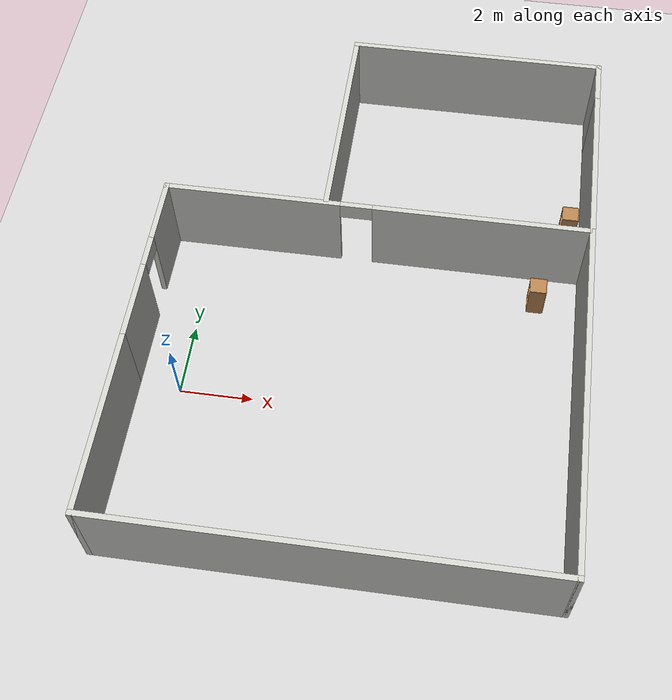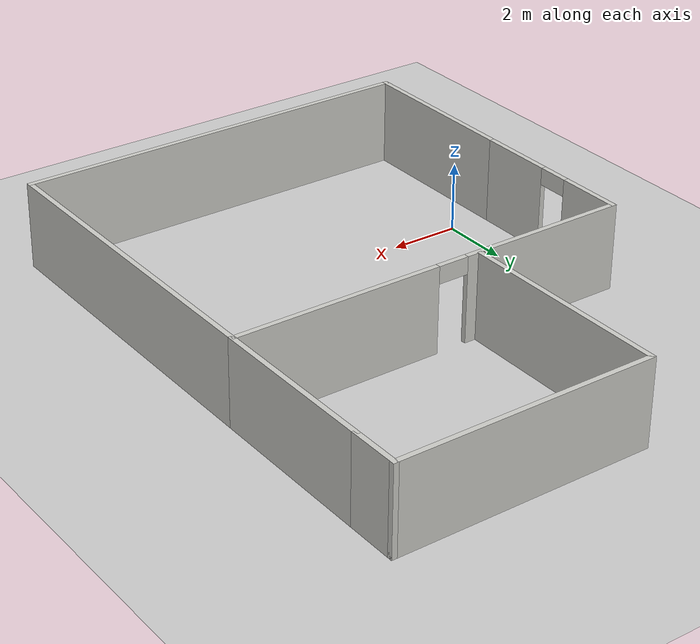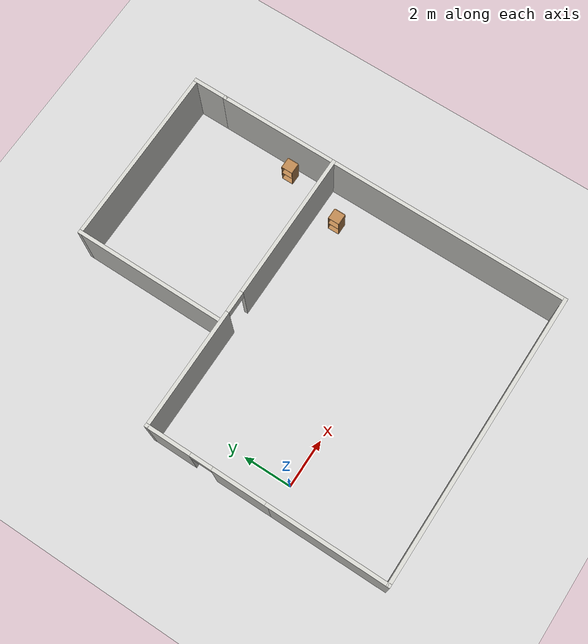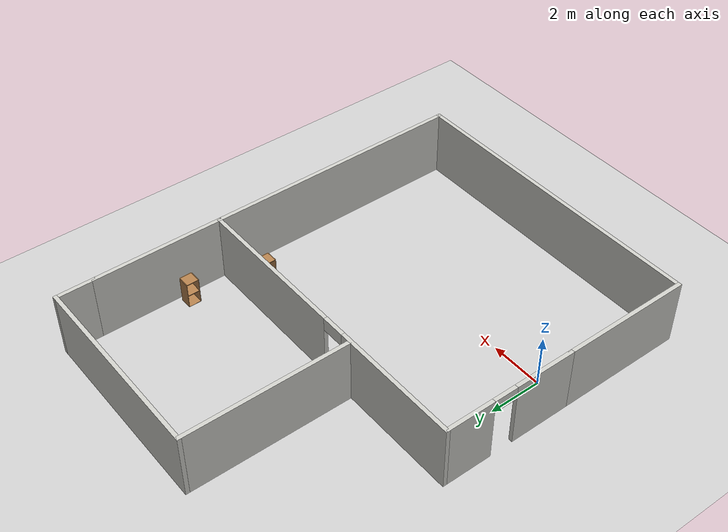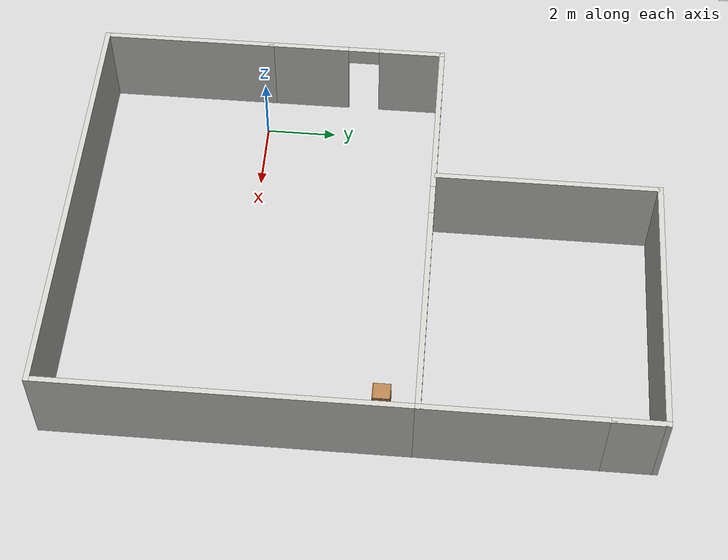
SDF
<sdf version="1.7">
 <world name="default">
  <light name="sun" type="directional">
   <pose>0 0 10 0 -0 0</pose>
   <diffuse>0.8 0.8 0.8 1</diffuse>
   <specular>0.2 0.2 0.2 1</specular>
   <attenuation>
    <range>1000</range>
    <constant>0.9</constant>
    <linear>0.01</linear>
    <quadratic>0.001</quadratic>
   </attenuation>
   <direction>-0.5 0.1 -0.9</direction>
   <spot><inner_angle>0</inner_angle><outer_angle>0</outer_angle><falloff>0</falloff></spot>
  </light>
  <model name="ground_plane">
   <static>1</static>
   <link name="link">
    <collision name="collision">
     <geometry><plane><normal>0 0 1</normal><size>100 100</size></plane></geometry>
     <surface><friction><ode><mu>100</mu><mu2>50</mu2></ode></friction></surface>
    </collision>
    <visual name="visual">
     <cast_shadows>0</cast_shadows>
     <geometry><plane><normal>0 0 1</normal><size>100 100</size></plane></geometry>
     <material>
      <script><uri>file://media/materials/scripts/gazebo.material</uri><name>Gazebo/Grey</name></script>
     </material>
    </visual>
   </link>
  </model>
  <gravity>0 0 -9.8</gravity>
  <magnetic_field>6e-06 2.3e-05 -4.2e-05</magnetic_field>
  <atmosphere type="adiabatic"/>
  <physics type="ode">
   <max_step_size>0.001</max_step_size>
   <real_time_factor>1</real_time_factor>
   <real_time_update_rate>1000</real_time_update_rate>
  </physics>
  <scene><ambient>1 1 1 1</ambient><background>0.7 0.7 0.7 1</background><shadows>1</shadows></scene>
  <audio><device>default</device></audio>
  <spherical_coordinates>
   <surface_model>EARTH_WGS84</surface_model>
   <latitude_deg>0</latitude_deg>
   <longitude_deg>0</longitude_deg>
   <elevation>0</elevation>
   <heading_deg>0</heading_deg>
  </spherical_coordinates>
  <model name="house_model">
   <pose>4.72 3.23006 0 0 -0 0</pose>
   <link name="Wall_12">
    <collision name="Wall_12_Collision">
     <geometry><box><size>5 0.15 2.5</size></box></geometry>
     <pose>0 0 1.25 0 -0 0</pose>
    </collision>
    <visual name="Wall_12_Visual">
     <pose>0 0 1.25 0 -0 0</pose>
     <geometry><box><size>5 0.15 2.5</size></box></geometry>
     <material>
      <script><uri>file://media/materials/scripts/gazebo.material</uri><name>Gazebo/CeilingTiled</name></script>
      <ambient>1 1 1 1</ambient>
     </material>
     <meta><layer>0</layer></meta>
    </visual>
    <pose>5.925 4.25 0 0 -0 1.5708</pose>
   </link>
   <link name="Wall_13">
    <collision name="Wall_13_Collision">
     <geometry><box><size>1.5 0.15 2.5</size></box></geometry>
     <pose>0 0 1.25 0 -0 0</pose>
    </collision>
    <visual name="Wall_13_Visual">
     <pose>0 0 1.25 0 -0 0</pose>
     <geometry><box><size>1.5 0.15 2.5</size></box></geometry>
     <material>
      <script><uri>file://media/materials/scripts/gazebo.material</uri><name>Gazebo/CeilingTiled</name></script>
      <ambient>1 1 1 1</ambient>
     </material>
     <meta><layer>0</layer></meta>
    </visual>
    <pose>5.925 7.35 0 0 -0 1.5708</pose>
   </link>
   <link name="Wall_14">
    <collision name="Wall_14_Collision">
     <geometry><box><size>7.5 0.15 2.5</size></box></geometry>
     <pose>0 0 1.25 0 -0 0</pose>
    </collision>
    <visual name="Wall_14_Visual">
     <pose>0 0 1.25 0 -0 0</pose>
     <geometry><box><size>7.5 0.15 2.5</size></box></geometry>
     <material>
      <script><uri>file://media/materials/scripts/gazebo.material</uri><name>Gazebo/CeilingTiled</name></script>
      <ambient>1 1 1 1</ambient>
     </material>
     <meta><layer>0</layer></meta>
    </visual>
    <pose>2.25 8.025 0 0 -0 3.14159</pose>
   </link>
   <link name="Wall_18">
    <collision name="Wall_18_Collision">
     <geometry><box><size>6.25 0.15 2.5</size></box></geometry>
     <pose>0 0 1.25 0 -0 0</pose>
    </collision>
    <visual name="Wall_18_Visual">
     <pose>0 0 1.25 0 -0 0</pose>
     <geometry><box><size>6.25 0.15 2.5</size></box></geometry>
     <material>
      <script><uri>file://media/materials/scripts/gazebo.material</uri><name>Gazebo/CeilingTiled</name></script>
      <ambient>1 1 1 1</ambient>
     </material>
     <meta><layer>0</layer></meta>
    </visual>
    <pose>-1.425 4.975 0 0 -0 -1.5708</pose>
   </link>
   <link name="Wall_5">
    <collision name="Wall_5_Collision">
     <geometry><box><size>5 0.15 2.5</size></box></geometry>
     <pose>0 0 1.25 0 -0 0</pose>
    </collision>
    <visual name="Wall_5_Visual">
     <pose>0 0 1.25 0 -0 0</pose>
     <geometry><box><size>5 0.15 2.5</size></box></geometry>
     <material>
      <script><uri>file://media/materials/scripts/gazebo.material</uri><name>Gazebo/CeilingTiled</name></script>
      <ambient>1 1 1 1</ambient>
     </material>
     <meta><layer>0</layer></meta>
    </visual>
    <pose>-5.925 -5.6 0 0 -0 -1.5708</pose>
   </link>
   <link name="Wall_6">
    <collision name="Wall_6_Collision">
     <geometry><box><size>12 0.15 2.5</size></box></geometry>
     <pose>0 0 1.25 0 -0 0</pose>
    </collision>
    <visual name="Wall_6_Visual">
     <pose>0 0 1.25 0 -0 0</pose>
     <geometry><box><size>12 0.15 2.5</size></box></geometry>
     <material>
      <script><uri>file://media/materials/scripts/gazebo.material</uri><name>Gazebo/CeilingTiled</name></script>
      <ambient>1 1 1 1</ambient>
     </material>
     <meta><layer>0</layer></meta>
    </visual>
    <pose>-1e-06 -8.025 0 0 -0 0</pose>
   </link>
   <link name="Wall_7">
    <collision name="Wall_7_Collision">
     <geometry><box><size>10 0.15 2.5</size></box></geometry>
     <pose>0 0 1.25 0 -0 0</pose>
    </collision>
    <visual name="Wall_7_Visual">
     <pose>0 0 1.25 0 -0 0</pose>
     <geometry><box><size>10 0.15 2.5</size></box></geometry>
     <material>
      <script><uri>file://media/materials/scripts/gazebo.material</uri><name>Gazebo/CeilingTiled</name></script>
      <ambient>1 1 1 1</ambient>
     </material>
     <meta><layer>0</layer></meta>
    </visual>
    <pose>5.925 -3.1 0 0 -0 1.5708</pose>
   </link>
   <link name="Wall_8">
    <pose>-1e-06 1.825 0 0 -0 3.14159</pose>
    <visual name="Wall_8_Visual_0">
     <pose>-2.93892 0 1.25 0 -0 0</pose>
     <geometry><box><size>6.12216 0.15 2.5</size></box></geometry>
     <material>
      <script><uri>file://media/materials/scripts/gazebo.material</uri><name>Gazebo/CeilingTiled</name></script>
      <ambient>1 1 1 1</ambient>
     </material>
     <meta><layer>0</layer></meta>
    </visual>
    <collision name="Wall_8_Collision_0">
     <geometry><box><size>6.12216 0.15 2.5</size></box></geometry>
     <pose>-2.93892 0 1.25 0 -0 0</pose>
    </collision>
    <visual name="Wall_8_Visual_1">
     <pose>3.51108 0 1.25 0 -0 0</pose>
     <geometry><box><size>4.97784 0.15 2.5</size></box></geometry>
     <material>
      <script><uri>file://media/materials/scripts/gazebo.material</uri><name>Gazebo/CeilingTiled</name></script>
      <ambient>1 1 1 1</ambient>
     </material>
     <meta><layer>0</layer></meta>
    </visual>
    <collision name="Wall_8_Collision_1">
     <geometry><box><size>4.97784 0.15 2.5</size></box></geometry>
     <pose>3.51108 0 1.25 0 -0 0</pose>
    </collision>
    <visual name="Wall_8_Visual_2">
     <pose>0.572156 0 2.25 0 -0 0</pose>
     <geometry><box><size>0.9 0.15 0.5</size></box></geometry>
     <material>
      <script><uri>file://media/materials/scripts/gazebo.material</uri><name>Gazebo/CeilingTiled</name></script>
      <ambient>1 1 1 1</ambient>
     </material>
     <meta><layer>0</layer></meta>
    </visual>
    <collision name="Wall_8_Collision_2">
     <geometry><box><size>0.9 0.15 0.5</size></box></geometry>
     <pose>0.572156 0 2.25 0 -0 0</pose>
    </collision>
   </link>
   <link name="Wall_9">
    <pose>-5.925 -0.675 0 0 -0 -1.5708</pose>
    <visual name="Wall_9_Visual_0">
     <pose>-1.62322 0 1.25 0 -0 0</pose>
     <geometry><box><size>1.90355 0.15 2.5</size></box></geometry>
     <material>
      <script><uri>file://media/materials/scripts/gazebo.material</uri><name>Gazebo/CeilingTiled</name></script>
      <ambient>1 1 1 1</ambient>
     </material>
     <meta><layer>0</layer></meta>
    </visual>
    <collision name="Wall_9_Collision_0">
     <geometry><box><size>1.90355 0.15 2.5</size></box></geometry>
     <pose>-1.62322 0 1.25 0 -0 0</pose>
    </collision>
    <visual name="Wall_9_Visual_1">
     <pose>1.40178 0 1.25 0 -0 0</pose>
     <geometry><box><size>2.34645 0.15 2.5</size></box></geometry>
     <material>
      <script><uri>file://media/materials/scripts/gazebo.material</uri><name>Gazebo/CeilingTiled</name></script>
      <ambient>1 1 1 1</ambient>
     </material>
     <meta><layer>0</layer></meta>
    </visual>
    <collision name="Wall_9_Collision_1">
     <geometry><box><size>2.34645 0.15 2.5</size></box></geometry>
     <pose>1.40178 0 1.25 0 -0 0</pose>
    </collision>
    <visual name="Wall_9_Visual_2">
     <pose>-0.221447 0 2.25 0 -0 0</pose>
     <geometry><box><size>0.9 0.15 0.5</size></box></geometry>
     <material>
      <script><uri>file://media/materials/scripts/gazebo.material</uri><name>Gazebo/CeilingTiled</name></script>
      <ambient>1 1 1 1</ambient>
     </material>
     <meta><layer>0</layer></meta>
    </visual>
    <collision name="Wall_9_Collision_2">
     <geometry><box><size>0.9 0.15 0.5</size></box></geometry>
     <pose>-0.221447 0 2.25 0 -0 0</pose>
    </collision>
   </link>
   <static>1</static>
  </model>
  <model name="cabinet">
   <static>1</static>
   <link name="cabinet_bottom_plate">
    <inertial>
     <pose>0 0 -1 0 -0 0</pose>
     <inertia><ixx>2.05</ixx><ixy>0</ixy><ixz>0</ixz><iyy>2.05</iyy><iyz>0</iyz><izz>2.05</izz></inertia>
     <mass>25</mass>
    </inertial>
    <collision name="cabinet_bottom_plate_geom">
     <pose>0 0 0.01 0 -0 0</pose>
     <geometry><box><size>0.45 0.45 0.02</size></box></geometry>
    </collision>
    <visual name="cabinet_bottom_plate_geom_visual">
     <pose>0 0 0.01 0 -0 0</pose>
     <geometry><box><size>0.45 0.45 0.02</size></box></geometry>
     <material>
      <script><uri>file://media/materials/scripts/gazebo.material</uri><name>Gazebo/Wood</name></script>
     </material>
    </visual>
    <collision name="cabinet_bottom_plate_geom_cabinet_back_plate">
     <pose>0.235 0 0.51 0 -0 0</pose>
     <geometry><box><size>0.02 0.45 1.02</size></box></geometry>
    </collision>
    <visual name="cabinet_bottom_plate_geom_cabinet_back_plate_visual">
     <pose>0.235 0 0.51 0 -0 0</pose>
     <geometry><box><size>0.02 0.45 1.02</size></box></geometry>
     <material>
      <script><uri>file://media/materials/scripts/gazebo.material</uri><name>Gazebo/Wood</name></script>
     </material>
    </visual>
    <collision name="cabinet_bottom_plate_geom_cabinet_left_plate">
     <pose>0 0.235 0.51 0 -0 0</pose>
     <geometry><box><size>0.45 0.02 1.02</size></box></geometry>
    </collision>
    <visual name="cabinet_bottom_plate_geom_cabinet_left_plate_visual">
     <pose>0 0.235 0.51 0 -0 0</pose>
     <geometry><box><size>0.45 0.02 1.02</size></box></geometry>
     <material>
      <script><uri>file://media/materials/scripts/gazebo.material</uri><name>Gazebo/Wood</name></script>
     </material>
    </visual>
    <collision name="cabinet_bottom_plate_geom_cabinet_middle_plate">
     <pose>0 0 0.51 0 -0 0</pose>
     <geometry><box><size>0.45 0.45 0.02</size></box></geometry>
    </collision>
    <visual name="cabinet_bottom_plate_geom_cabinet_middle_plate_visual">
     <pose>0 0 0.51 0 -0 0</pose>
     <geometry><box><size>0.45 0.45 0.02</size></box></geometry>
     <material>
      <script><uri>file://media/materials/scripts/gazebo.material</uri><name>Gazebo/Wood</name></script>
     </material>
    </visual>
    <collision name="cabinet_bottom_plate_geom_cabinet_right_plate">
     <pose>0 -0.235 0.51 0 -0 0</pose>
     <geometry><box><size>0.45 0.02 1.02</size></box></geometry>
    </collision>
    <visual name="cabinet_bottom_plate_geom_cabinet_right_plate_visual">
     <pose>0 -0.235 0.51 0 -0 0</pose>
     <geometry><box><size>0.45 0.02 1.02</size></box></geometry>
     <material>
      <script><uri>file://media/materials/scripts/gazebo.material</uri><name>Gazebo/Wood</name></script>
     </material>
    </visual>
    <collision name="cabinet_bottom_plate_geom_cabinet_top_plate">
     <pose>0 0 1.01 0 -0 0</pose>
     <geometry><box><size>0.45 0.45 0.02</size></box></geometry>
    </collision>
    <visual name="cabinet_bottom_plate_geom_cabinet_top_plate_visual">
     <pose>0 0 1.01 0 -0 0</pose>
     <geometry><box><size>0.45 0.45 0.02</size></box></geometry>
     <material>
      <script><uri>file://media/materials/scripts/gazebo.material</uri><name>Gazebo/Wood</name></script>
     </material>
    </visual>
   </link>
   <pose>10.1852 6.73099 0 0 -0 0</pose>
  </model>
  <model name="cabinet_0">
   <static>1</static>
   <link name="cabinet_bottom_plate">
    <inertial>
     <pose>0 0 -1 0 -0 0</pose>
     <inertia><ixx>2.05</ixx><ixy>0</ixy><ixz>0</ixz><iyy>2.05</iyy><iyz>0</iyz><izz>2.05</izz></inertia>
     <mass>25</mass>
    </inertial>
    <collision name="cabinet_bottom_plate_geom">
     <pose>0 0 0.01 0 -0 0</pose>
     <geometry><box><size>0.45 0.45 0.02</size></box></geometry>
    </collision>
    <visual name="cabinet_bottom_plate_geom_visual">
     <pose>0 0 0.01 0 -0 0</pose>
     <geometry><box><size>0.45 0.45 0.02</size></box></geometry>
     <material>
      <script><uri>file://media/materials/scripts/gazebo.material</uri><name>Gazebo/Wood</name></script>
     </material>
    </visual>
    <collision name="cabinet_bottom_plate_geom_cabinet_back_plate">
     <pose>0.235 0 0.51 0 -0 0</pose>
     <geometry><box><size>0.02 0.45 1.02</size></box></geometry>
    </collision>
    <visual name="cabinet_bottom_plate_geom_cabinet_back_plate_visual">
     <pose>0.235 0 0.51 0 -0 0</pose>
     <geometry><box><size>0.02 0.45 1.02</size></box></geometry>
     <material>
      <script><uri>file://media/materials/scripts/gazebo.material</uri><name>Gazebo/Wood</name></script>
     </material>
    </visual>
    <collision name="cabinet_bottom_plate_geom_cabinet_left_plate">
     <pose>0 0.235 0.51 0 -0 0</pose>
     <geometry><box><size>0.45 0.02 1.02</size></box></geometry>
    </collision>
    <visual name="cabinet_bottom_plate_geom_cabinet_left_plate_visual">
     <pose>0 0.235 0.51 0 -0 0</pose>
     <geometry><box><size>0.45 0.02 1.02</size></box></geometry>
     <material>
      <script><uri>file://media/materials/scripts/gazebo.material</uri><name>Gazebo/Wood</name></script>
     </material>
    </visual>
    <collision name="cabinet_bottom_plate_geom_cabinet_middle_plate">
     <pose>0 0 0.51 0 -0 0</pose>
     <geometry><box><size>0.45 0.45 0.02</size></box></geometry>
    </collision>
    <visual name="cabinet_bottom_plate_geom_cabinet_middle_plate_visual">
     <pose>0 0 0.51 0 -0 0</pose>
     <geometry><box><size>0.45 0.45 0.02</size></box></geometry>
     <material>
      <script><uri>file://media/materials/scripts/gazebo.material</uri><name>Gazebo/Wood</name></script>
     </material>
    </visual>
    <collision name="cabinet_bottom_plate_geom_cabinet_right_plate">
     <pose>0 -0.235 0.51 0 -0 0</pose>
     <geometry><box><size>0.45 0.02 1.02</size></box></geometry>
    </collision>
    <visual name="cabinet_bottom_plate_geom_cabinet_right_plate_visual">
     <pose>0 -0.235 0.51 0 -0 0</pose>
     <geometry><box><size>0.45 0.02 1.02</size></box></geometry>
     <material>
      <script><uri>file://media/materials/scripts/gazebo.material</uri><name>Gazebo/Wood</name></script>
     </material>
    </visual>
    <collision name="cabinet_bottom_plate_geom_cabinet_top_plate">
     <pose>0 0 1.01 0 -0 0</pose>
     <geometry><box><size>0.45 0.45 0.02</size></box></geometry>
    </collision>
    <visual name="cabinet_bottom_plate_geom_cabinet_top_plate_visual">
     <pose>0 0 1.01 0 -0 0</pose>
     <geometry><box><size>0.45 0.45 0.02</size></box></geometry>
     <material>
      <script><uri>file://media/materials/scripts/gazebo.material</uri><name>Gazebo/Wood</name></script>
     </material>
    </visual>
   </link>
   <pose>9.39642 4.08208 0 0 -0 0</pose>
  </model>
 </world>
</sdf>
